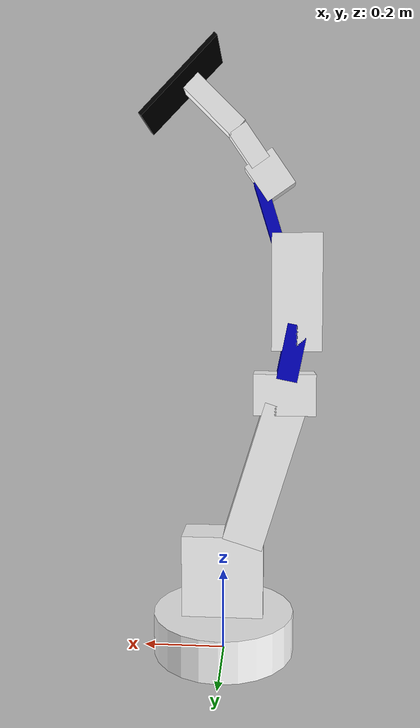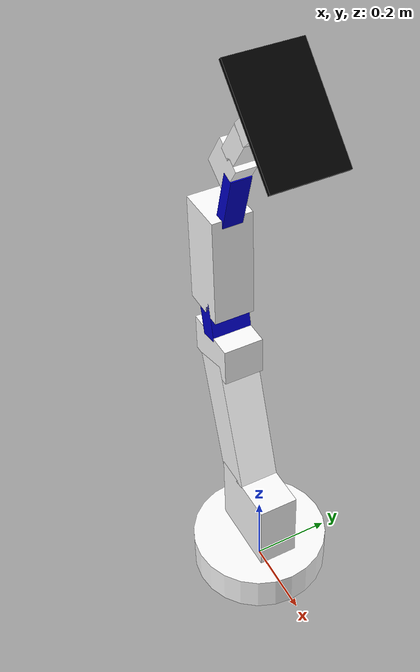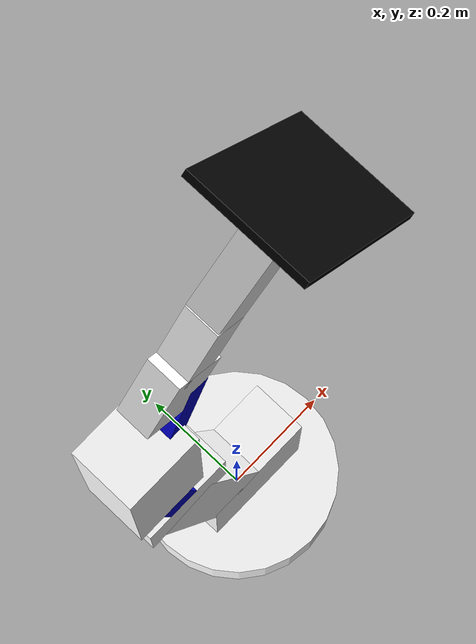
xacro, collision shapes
<?xml version="1.0"?>

<robot name="jaime" xmlns:xacro="http://www.ros.org/wiki/xacro">

<xacro:property name="ancho" value="0.2">

</xacro:property>
  <material name="blue">
    <color rgba="0 0 0.8 1"/>
  </material>
  <material name="black">
    <color rgba="0 0 0 1"/>
  </material>
  <material name="white">
    <color rgba="1 1 1 1"/>
  </material>

  <link name="base_link">
    <visual>
      <geometry>
        <mesh filename="package://jaime/meshes_jaime/base_segment.stl" scale="0.001 0.001 0.001"/>
      </geometry>
      <material name="white"/>
      <origin xyz="0.0 0.0 0" rpy="0.0 0.0 0.0"/>
    </visual>

    <collision>
    <origin xyz="0.0 0.0 0.05" rpy="0.0 0.0 0.0"/>
    <geometry>
      <cylinder radius="0.175" length="0.1"/>
    </geometry>
    </collision>

    <collision>
    <origin xyz="0.0 0.0 0.2" rpy="0.0 0.0 0.0"/>
    <geometry>
      <box size="0.2 0.1 0.2"/>
    </geometry>
    </collision>

    <collision>
    <origin xyz="-0.1 0.0 0.45" rpy="0 -0.3 0.0"/>
    <geometry>
      <box size="0.1 0.1 0.35"/>
    </geometry>
    </collision>

    <collision>
    <origin xyz="-0.15 0.0 0.65" rpy="0 0 0.0"/>
    <geometry>
      <box size="0.15 0.1 0.1"/>
    </geometry>
    </collision>

    <inertial>
      <origin rpy="0 0 0" xyz="-0.048761000000000006 0.0 0.271195"/>
      <mass value="1.6895311238439816"/>
      <inertia ixx="0.08719578772036611" ixy="5.4784475406747093e-17" ixz="0.022449725248199624" iyy="0.09476693416632961" iyz="-2.4061783957761517e-16" izz="0.015163560157224643"/>
    </inertial>

  </link>

  <link name="entre_cuello_link">
  <origin xyz="0 0.0 -0.02" rpy="0.0 0.0 0.0"/>
    <visual>
      <geometry>
        <mesh filename="package://jaime/meshes_jaime/middle_link.stl" scale="0.001 0.001 0.001"/>
      </geometry>
      <material name="blue"/>
      <origin xyz="0 0.0 -0.02" rpy="0.0 0.0 0.0"/>
    </visual>

    <collision>
    <origin xyz="-0.01 0.0 0.066" rpy="0 -0.2 0.0"/>
    <geometry>
      <box size="0.05 0.1 0.135"/>
    </geometry>
    </collision>

    <inertial>
      <origin rpy="0 0 0" xyz="-0.016311 0.0 0.099931"/>
      <mass value="0.04935881321854115"/>
      <inertia ixx="0.00013683358492508186" ixy="1.0391185824431925e-20" ixz="1.6864941381036664e-05" iyy="0.0001101218997112331" iyz="4.551194773697158e-20" izz="4.4150842757921956e-05"/>
    </inertial>

  </link>

  <link name="cuello_link">
  <origin xyz="0. 0.0 0" rpy="0.0 0.0 0.0"/>
    <visual>
      <geometry>
        <mesh filename="package://jaime/meshes_jaime/middle_segment.stl" scale="0.001 0.001 0.001"/>
      </geometry>
      <material name="white"/>
      <origin xyz="0 0.0 0" rpy="0.0 0.0 0.0"/>
    </visual>

    <collision>
    <origin xyz="-0.0 0.0 0.09" rpy="0 0 0.0"/>
    <geometry>
      <box size="0.12 0.1 0.28"/>
    </geometry>
    </collision>

    <inertial>
      <origin rpy="0 0 0" xyz="-0.008064 0.0 0.08278"/>
      <mass value="0.32942"/>
      <inertia ixx="0.0016762858507607943" ixy="-4.8489364878642617e-20" ixz="-0.00011633194117814697" iyy="0.0018413198294705605" iyz="-1.2568953790911309e-19" izz="0.00030225037441020564"/>
    </inertial>
  </link>

  <link name="entre_cuello_2_link">
  <origin xyz="0.0 0.0 0.0" rpy="0.0 0.0 0.0"/>
    <visual>
      <geometry>
        <mesh filename="package://jaime/meshes_jaime/upper_link.stl" scale="0.001 0.001 0.001"/>
      </geometry>
      <material name="blue"/>
      <origin xyz="0.0 0.0 0" rpy="0.0 0.0 0.0"/>
    </visual>

    <collision>
    <origin xyz="0.03 0.0 0.08" rpy="0 0.3 0.0"/>
    <geometry>
      <box size="0.03 0.05 0.2"/>
    </geometry>
    </collision>

    <inertial>
      <origin rpy="0 0 0" xyz="0.034091 0.0 0.104876"/>
      <mass value="0.019952905767724887"/>
      <inertia ixx="7.401008323582294e-05" ixy="4.2619599656491147e-20" ixz="-2.1641569166888918e-05" iyy="6.762990364652787e-05" iyz="1.346217893341262e-19" izz="2.3087743207129134e-05"/>
    </inertial>

  </link>

  <link name="cuello_2_link">
  <origin xyz="0 0.0 0" rpy="0.0 0.0 0.0"/>
    <visual>
      <geometry>
        <mesh filename="package://jaime/meshes_jaime/upper_segment.stl" scale="0.001 0.001 0.001"/>
      </geometry>
      <material name="white"/>
      <origin xyz="0.0 0.0 0.0" rpy="0.0 0.0 0.0"/>
    </visual>

    <collision>
    <origin xyz="-0.02 0.0 0.03" rpy="0 0.6 0.0"/>
    <geometry>
      <box size="0.08 0.05 0.1"/>
    </geometry>
    </collision>

    <collision>
    <origin xyz="0.03 0.0 0.1" rpy="0 0.6 0.0"/>
    <geometry>
      <box size="0.05 0.05 0.1"/>
    </geometry>
    </collision>

    <inertial>
      <origin rpy="0 0 0" xyz="-0.003079 9.001e-10 0.04753"/>
      <mass value="0.07524443531369857"/>
      <inertia ixx="0.00010323130575479441" ixy="-4.678798365483059e-13" ixz="-5.295549059114918e-05" iyy="0.0001405766236174683" iyz="-2.5520718357180323e-12" izz="5.971848095580196e-05"/>
    </inertial>

  </link>

  <link name="cuello_3_link">
  <origin xyz="0 0.0 0" rpy="0.0 0.0 0.0"/>
    <visual>
      <geometry>
        <mesh filename="package://jaime/meshes_jaime/top_segment.stl" scale="0.001 0.001 0.001"/>
      </geometry>
      <material name="white"/>
      <origin xyz="0.0 0.0 0.0" rpy="0.0 0.0 0.0"/>
    </visual>

    <collision>
    <origin xyz="0.05 0.0 0.06" rpy="0 0.785 0.0"/>
    <geometry>
      <box size="0.05 0.05 0.16"/>
    </geometry>
    </collision>

    <inertial>
      <origin rpy="0 0 0" xyz="-0.003079 9.001e-10 0.04753"/>
      <mass value="0.050927614310487625"/>
      <inertia ixx="5.342337042769748e-05" ixy="-1.9238368188254434e-20" ixz="-5.142424748971835e-05" iyy="0.00011356719668945245" iyz="-4.589475851232928e-21" izz="6.775750723831377e-05"/>
    </inertial>

  </link>

  <link name="Tablet">
    <visual>
      <geometry>
        <mesh filename="package://jaime/meshes_jaime/tablet.stl" scale="0.001 0.001 0.001"/>
      </geometry>
      <material name="black"/>
      <origin xyz="0.0 0.0 0.0" rpy="1.57 0.785 0.0"/>
    </visual>

    <collision>
    <origin xyz="0.0 0.0 0.0" rpy="0 -0.785 0.0"/>
    <geometry>
      <box size="0.01 0.17 0.25"/>
    </geometry>
    </collision>

    <inertial>
      <origin rpy="1.414 0.785 0" xyz="0 0.6 0"/>
      <mass value="0"/>
      <inertia ixx= "0.00023852500001664517" ixy="0" ixz="0" iyy="0.00043338531058851275" iyz="0" izz="0.0004993545010816019"/>
    </inertial>

  </link>

  <joint name="primero" type="revolute">
    <parent link="base_link"/>
    <child link="entre_cuello_link"/>
    <axis xyz="0 1 0"/>
    <origin xyz="-0.158 0.0 0.68518" rpy="0.0 0 0.0"/>
    <limit upper="0.7" lower="0" velocity="2" effort="1"/>
  </joint>

  <joint name="segundo" type="revolute">
    <parent link="entre_cuello_link"/>
    <child link="cuello_link"/>
    <axis xyz="0 1 0"/>
    <origin xyz="-0.02 0.0 0.12" rpy="0.0 0 0.0"/>
    <limit upper="0.7" lower="0" velocity="2" effort="1"/>
    <mimic joint="primero" multiplier="1" offset="0" />
  </joint>

  <joint name="tercero" type="revolute">
    <parent link="cuello_link"/>
    <child link="entre_cuello_2_link"/>
    <axis xyz="0 1 0"/>
    <origin xyz="0.03 0.0 0.18" rpy="0.0 0 0.0"/>
    <limit upper="0.7" lower="0" velocity="2" effort="1"/>
  </joint>

  <joint name="cuarto" type="revolute">
    <parent link="entre_cuello_2_link"/>
    <child link="cuello_2_link"/>
    <axis xyz="0 1 0"/>
    <origin xyz="0.055 0.0 0.16" rpy="0.0 0 0.0"/>
    <limit upper="0.7" lower="0" velocity="2" effort="1"/>
    <mimic joint="tercero" multiplier="1" offset="0" />
  </joint>

  <joint name="quinto" type="revolute">
    <parent link="cuello_2_link"/>
    <child link="cuello_3_link"/>
    <axis xyz="0 1 0"/>
    <origin xyz="0.063 0.0 0.138" rpy="0.0 0 0.0"/>
    <limit upper="0.785" lower="0" velocity="2" effort="1"/>
  </joint>

   <joint name="tablet" type="fixed">
    <parent link="cuello_3_link"/>
    <child link="Tablet"/>
    <origin xyz="0.13 0.0 0.11" rpy="0.0 0 0.0"/>
  </joint>

  <transmission name="tran1">
    <type>transmission_interface/SimpleTransmission</type>
    <joint name="primero">
      <hardwareInterface>EffortJointInterface</hardwareInterface>
    </joint>
    <actuator name="motor1">
      <hardwareInterface>EffortJointInterface</hardwareInterface>
      <mechanicalReduction>1</mechanicalReduction>
    </actuator>
  </transmission>

  <transmission name="tran2">
    <type>transmission_interface/SimpleTransmission</type>
    <joint name="segundo">
      <hardwareInterface>EffortJointInterface</hardwareInterface>
    </joint>
    <actuator name="motor2">
      <hardwareInterface>EffortJointInterface</hardwareInterface>
      <mechanicalReduction>1</mechanicalReduction>
    </actuator>
  </transmission>

  <transmission name="tran3">
    <type>transmission_interface/SimpleTransmission</type>
    <joint name="tercero">
      <hardwareInterface>EffortJointInterface</hardwareInterface>
    </joint>
    <actuator name="motor3">
      <hardwareInterface>EffortJointInterface</hardwareInterface>
      <mechanicalReduction>1</mechanicalReduction>
    </actuator>
  </transmission>

  <transmission name="tran4">
    <type>transmission_interface/SimpleTransmission</type>
    <joint name="cuarto">
      <hardwareInterface>EffortJointInterface</hardwareInterface>
    </joint>
    <actuator name="motor4">
      <hardwareInterface>EffortJointInterface</hardwareInterface>
      <mechanicalReduction>1</mechanicalReduction>
    </actuator>
  </transmission>

  <transmission name="tran5">
    <type>transmission_interface/SimpleTransmission</type>
    <joint name="quinto">
      <hardwareInterface>EffortJointInterface</hardwareInterface>
    </joint>
    <actuator name="motor5">
      <hardwareInterface>EffortJointInterface</hardwareInterface>
      <mechanicalReduction>1</mechanicalReduction>
    </actuator>
  </transmission>

  <gazebo>
    <plugin name="gazebo_ros_control" filename="libgazebo_ros_control.so">
      <robotNamespace>/jaime</robotNamespace>
    </plugin>
  </gazebo>

</robot>
